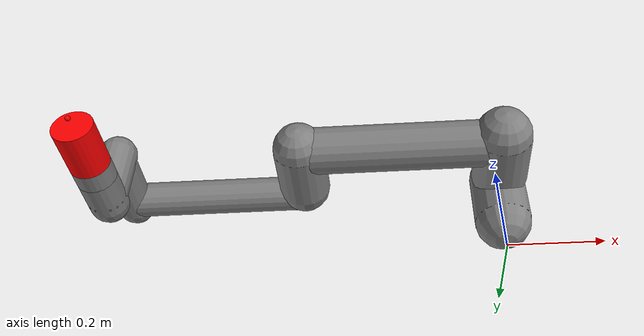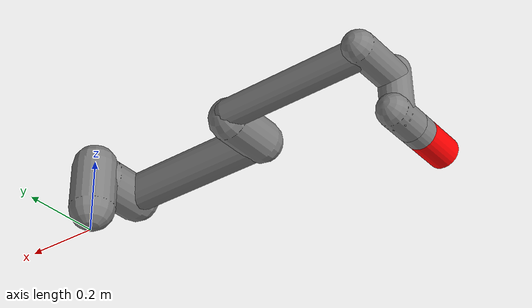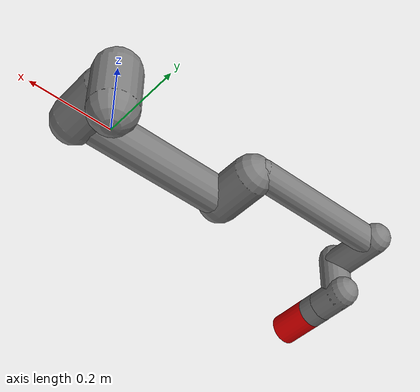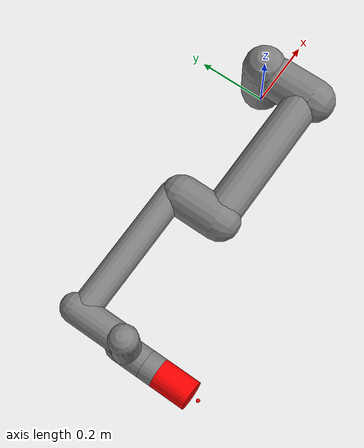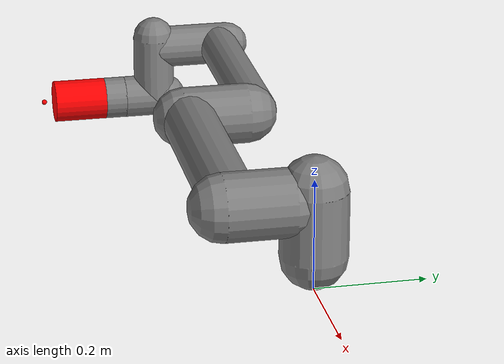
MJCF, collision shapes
<mujoco model="ur5e">
  <compiler autolimits="true" angle="radian"/>
  <option integrator="implicitfast"/>
  <default>
    <default class="/">
      <default class="ur5e">
        <material specular="0.5" shininess="0.25"/>
        <joint axis="0 1 0" range="-6.2831900000000003 6.2831900000000003" armature="0.10000000000000001"/>
        <site group="4" rgba="0.5 0.5 0.5 0.29999999999999999" size="0.001"/>
        <general ctrlrange="-6.2831000000000001 6.2831000000000001" forcerange="-150 150" gaintype="fixed" biastype="affine" gainprm="2000" biasprm="0 -2000 -400"/>
        <default class="size3">
          <default class="size3_limited">
            <joint range="-3.1415000000000002 3.1415000000000002"/>
            <general ctrlrange="-3.1415000000000002 3.1415000000000002"/>
          </default>
        </default>
        <default class="size1">
          <general forcerange="-28 28" gainprm="500" biasprm="0 -500 -100"/>
        </default>
        <default class="visual">
          <geom type="mesh" contype="0" conaffinity="0" group="2"/>
        </default>
        <default class="collision">
          <geom type="capsule" group="3"/>
          <default class="eef_collision">
            <geom type="cylinder"/>
          </default>
        </default>
      </default>
    </default>
    <default class="vacuum_gripper/"/>
  </default>
  <asset>
    <material name="black" class="ur5e" rgba="0.033000000000000002 0.033000000000000002 0.033000000000000002 1"/>
    <material name="jointgray" class="ur5e" rgba="0.27800000000000002 0.27800000000000002 0.27800000000000002 1"/>
    <material name="linkgray" class="ur5e" rgba="0.81999999999999995 0.81999999999999995 0.81999999999999995 1"/>
    <material name="urblue" class="ur5e" rgba="0.48999999999999999 0.67800000000000005 0.80000000000000004 1"/>
    <mesh name="base_0" class="/" file="base_0-5f93152994e0f999174cb75882f556cd760d637d.obj"/>
    <mesh name="base_1" class="/" file="base_1-b3f3b902ea82c2cd8f1eb4e2f17051a77d0b5aca.obj"/>
    <mesh name="shoulder_0" class="/" file="shoulder_0-25635560783dbe95ad2c2d801f7124ef051af0fa.obj"/>
    <mesh name="shoulder_1" class="/" file="shoulder_1-f962752be9057572ca04c7984e63c10cc456d0ff.obj"/>
    <mesh name="shoulder_2" class="/" file="shoulder_2-0c8ec2edec90effe9fa9769c391e0b34b8e326b8.obj"/>
    <mesh name="upperarm_0" class="/" file="upperarm_0-d0095589702d42a94da15a099815e565fc4a53bc.obj"/>
    <mesh name="upperarm_1" class="/" file="upperarm_1-4238cf0fc6ee8840a8b14497d42b5c5169149eaa.obj"/>
    <mesh name="upperarm_2" class="/" file="upperarm_2-2823c8ca17eae0f83c8ddece34935ff90ddf00ff.obj"/>
    <mesh name="upperarm_3" class="/" file="upperarm_3-6894ff569985fd22ce3f5a5113ce3e1e6b698a38.obj"/>
    <mesh name="forearm_0" class="/" file="forearm_0-12f326487f5f3d7b6b47b376292e04d67fba88dd.obj"/>
    <mesh name="forearm_1" class="/" file="forearm_1-8924861122901b845c6a00bcc7d7d6823e878b6e.obj"/>
    <mesh name="forearm_2" class="/" file="forearm_2-d59578ed656d29c4c95f50b52227198afa7a56a0.obj"/>
    <mesh name="forearm_3" class="/" file="forearm_3-c200775ab8a4f4bd1caa22e177a9c08b43d68c62.obj"/>
    <mesh name="wrist1_0" class="/" file="wrist1_0-046c8a7075dd693b4501daf6f622944d9130ab1e.obj"/>
    <mesh name="wrist1_1" class="/" file="wrist1_1-857a385bc0c78c12621e8b23198925c16388212d.obj"/>
    <mesh name="wrist1_2" class="/" file="wrist1_2-b608a06608014b91b7e5e581fea142a762bde488.obj"/>
    <mesh name="wrist2_0" class="/" file="wrist2_0-c4fb307f6b793fcd764f8ece4d79ba597b35ed15.obj"/>
    <mesh name="wrist2_1" class="/" file="wrist2_1-a70236a2d42b0bf1da2e7363b2977ebae9d9859c.obj"/>
    <mesh name="wrist2_2" class="/" file="wrist2_2-752adb14067cdecb847cee843f1938d9b0126a72.obj"/>
    <mesh name="wrist3" class="/" file="wrist3-950944a2ff757dfae2e61bce281f9639ba70efa6.obj"/>
    <mesh name="vacuum_gripper/gripper_mesh" class="vacuum_gripper/" file="vacuum_gripper-b8ba751c400decde48771f5e6970c281853af93c.stl" scale="1 1 1"/>
  </asset>
  <worldbody>
    <light name="spotlight" class="/" mode="targetbodycom" target="wrist_2_link" pos="0 -1 2"/>
    <body name="base" childclass="ur5e" quat="0 0 0 -1">
      <inertial pos="0 0 0" mass="4" diaginertia="0.0044333315599999999 0.0044333315599999999 0.0071999999999999998"/>
      <geom name="//unnamed_geom_0" class="visual" material="black" mesh="base_0"/>
      <geom name="//unnamed_geom_1" class="visual" material="jointgray" mesh="base_1"/>
      <body name="shoulder_link" pos="0 0 0.16300000000000001">
        <inertial pos="0 0 0" mass="3.7000000000000002" diaginertia="0.010267500000000001 0.010267500000000001 0.0066600000000000001"/>
        <joint name="shoulder_pan_joint" class="size3" axis="0 0 1"/>
        <geom name="//unnamed_geom_2" class="visual" material="urblue" mesh="shoulder_0"/>
        <geom name="//unnamed_geom_3" class="visual" material="black" mesh="shoulder_1"/>
        <geom name="//unnamed_geom_4" class="visual" material="jointgray" mesh="shoulder_2"/>
        <geom name="//unnamed_geom_5" class="collision" size="0.059999999999999998 0.059999999999999998" pos="0 0 -0.040000000000000001"/>
        <body name="upper_arm_link" pos="0 0.13800000000000001 0" quat="1 0 1 0">
          <inertial pos="0 0 0.21249999999999999" mass="8.3930000000000007" diaginertia="0.13388600000000001 0.13388600000000001 0.0151074"/>
          <joint name="shoulder_lift_joint" class="size3"/>
          <geom name="//unnamed_geom_6" class="visual" material="linkgray" mesh="upperarm_0"/>
          <geom name="//unnamed_geom_7" class="visual" material="black" mesh="upperarm_1"/>
          <geom name="//unnamed_geom_8" class="visual" material="jointgray" mesh="upperarm_2"/>
          <geom name="//unnamed_geom_9" class="visual" material="urblue" mesh="upperarm_3"/>
          <geom name="//unnamed_geom_10" class="collision" size="0.059999999999999998 0.059999999999999998" pos="0 -0.040000000000000001 0" quat="1 1 0 0"/>
          <geom name="//unnamed_geom_11" class="collision" size="0.050000000000000003 0.20000000000000001" pos="0 0 0.20000000000000001"/>
          <body name="forearm_link" pos="0 -0.13100000000000001 0.42499999999999999">
            <inertial pos="0 0 0.19600000000000001" mass="2.2749999999999999" diaginertia="0.031179599999999998 0.031179599999999998 0.0040949999999999997"/>
            <joint name="elbow_joint" class="size3_limited"/>
            <geom name="//unnamed_geom_12" class="visual" material="urblue" mesh="forearm_0"/>
            <geom name="//unnamed_geom_13" class="visual" material="linkgray" mesh="forearm_1"/>
            <geom name="//unnamed_geom_14" class="visual" material="black" mesh="forearm_2"/>
            <geom name="//unnamed_geom_15" class="visual" material="jointgray" mesh="forearm_3"/>
            <geom name="//unnamed_geom_16" class="collision" size="0.055 0.059999999999999998" pos="0 0.080000000000000002 0" quat="1 1 0 0"/>
            <geom name="//unnamed_geom_17" class="collision" size="0.037999999999999999 0.19" pos="0 0 0.20000000000000001"/>
            <body name="wrist_1_link" pos="0 0 0.39200000000000002" quat="1 0 1 0">
              <inertial pos="0 0.127 0" mass="1.2190000000000001" diaginertia="0.0025598999999999999 0.0025598999999999999 0.0021941999999999999"/>
              <joint name="wrist_1_joint" class="size1"/>
              <geom name="//unnamed_geom_18" class="visual" material="black" mesh="wrist1_0"/>
              <geom name="//unnamed_geom_19" class="visual" material="urblue" mesh="wrist1_1"/>
              <geom name="//unnamed_geom_20" class="visual" material="jointgray" mesh="wrist1_2"/>
              <geom name="//unnamed_geom_21" class="collision" size="0.040000000000000001 0.070000000000000007" pos="0 0.050000000000000003 0" quat="1 1 0 0"/>
              <body name="wrist_2_link" pos="0 0.127 0">
                <inertial pos="0 0 0.10000000000000001" mass="1.2190000000000001" diaginertia="0.0025598999999999999 0.0025598999999999999 0.0021941999999999999"/>
                <joint name="wrist_2_joint" class="size1" axis="0 0 1"/>
                <geom name="//unnamed_geom_22" class="visual" material="black" mesh="wrist2_0"/>
                <geom name="//unnamed_geom_23" class="visual" material="urblue" mesh="wrist2_1"/>
                <geom name="//unnamed_geom_24" class="visual" material="jointgray" mesh="wrist2_2"/>
                <geom name="//unnamed_geom_25" class="collision" size="0.040000000000000001 0.059999999999999998" pos="0 0 0.040000000000000001"/>
                <geom name="//unnamed_geom_26" class="collision" size="0.040000000000000001 0.040000000000000001" pos="0 0.02 0.10000000000000001" quat="1 1 0 0"/>
                <body name="wrist_3_link" pos="0 0 0.10000000000000001">
                  <inertial pos="0 0.077168299999999995 0" quat="1 0 0 1" mass="0.18890000000000001" diaginertia="0.00013213400000000001 9.90863e-05 9.90863e-05"/>
                  <joint name="wrist_3_joint" class="size1"/>
                  <geom name="//unnamed_geom_27" class="visual" material="linkgray" mesh="wrist3"/>
                  <geom name="//unnamed_geom_28" class="eef_collision" size="0.040000000000000001 0.02" pos="0 0.080000000000000002 0" quat="1 1 0 0"/>
                  <site name="attachment_site" pos="0 0.10000000000000001 0" quat="-1 1 0 0"/>
                  <body pos="0 0.10000000000000001 0" quat="-1 1 0 0" name="vacuum_gripper/">
                    <body name="vacuum_gripper/suction_base_link">
                      <geom name="vacuum_gripper//unnamed_geom_0" class="vacuum_gripper/" type="mesh" contype="0" conaffinity="0" rgba="0.69999999999999996 0.69999999999999996 0.69999999999999996 1" mass="0.5" mesh="vacuum_gripper/gripper_mesh"/>
                      <geom name="vacuum_gripper//unnamed_geom_1" class="vacuum_gripper/" type="cylinder" size="0.040000000000000001 0.050000000000000003" rgba="1 0 0 0" mass="0" pos="0 0 0.050000000000000003"/>
                      <body name="vacuum_gripper/tcp_link" pos="0 0 0.12">
                        <site name="vacuum_gripper/tcp_site" class="vacuum_gripper/" rgba="1 0 0 1" size="0.0050000000000000001"/>
                      </body>
                    </body>
                  </body>
                </body>
              </body>
            </body>
          </body>
        </body>
      </body>
    </body>
  </worldbody>
  <actuator>
    <general name="shoulder_pan" class="size3" joint="shoulder_pan_joint"/>
    <general name="shoulder_lift" class="size3" joint="shoulder_lift_joint"/>
    <general name="elbow" class="size3_limited" joint="elbow_joint"/>
    <general name="wrist_1" class="size1" joint="wrist_1_joint"/>
    <general name="wrist_2" class="size1" joint="wrist_2_joint"/>
    <general name="wrist_3" class="size1" joint="wrist_3_joint"/>
  </actuator>
  <keyframe>
    <key name="home" qpos="-1.5708 -1.5708 1.5708 -1.5708 -1.5708 0" ctrl="-1.5708 -1.5708 1.5708 -1.5708 -1.5708 0"/>
  </keyframe>
</mujoco>
